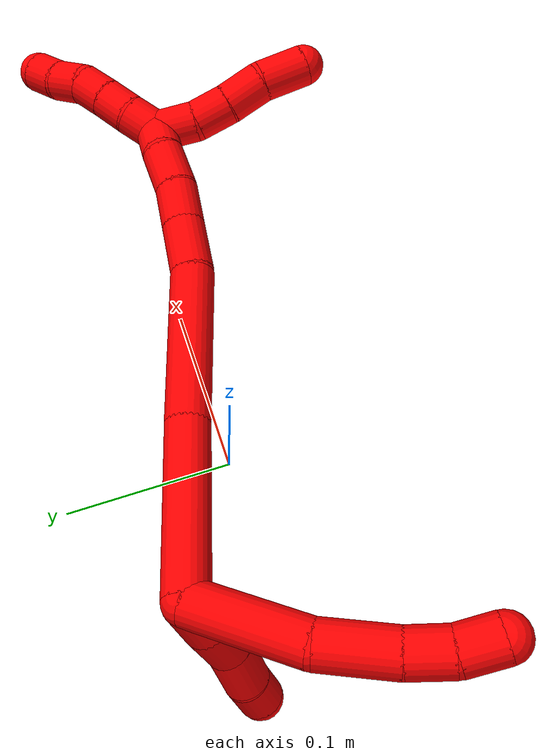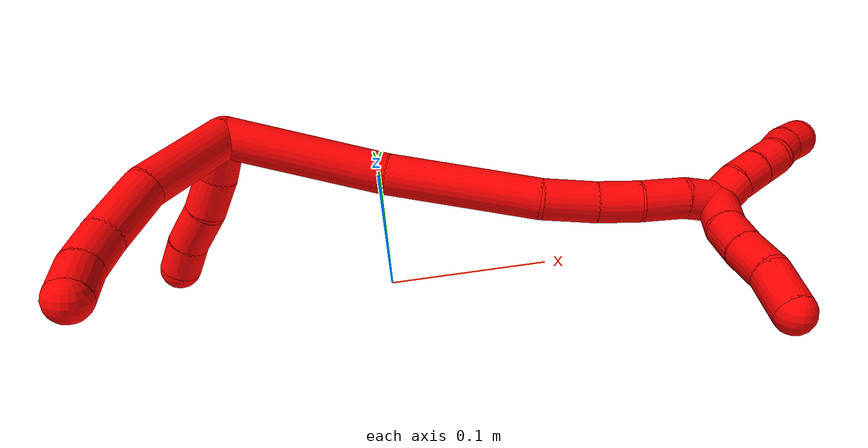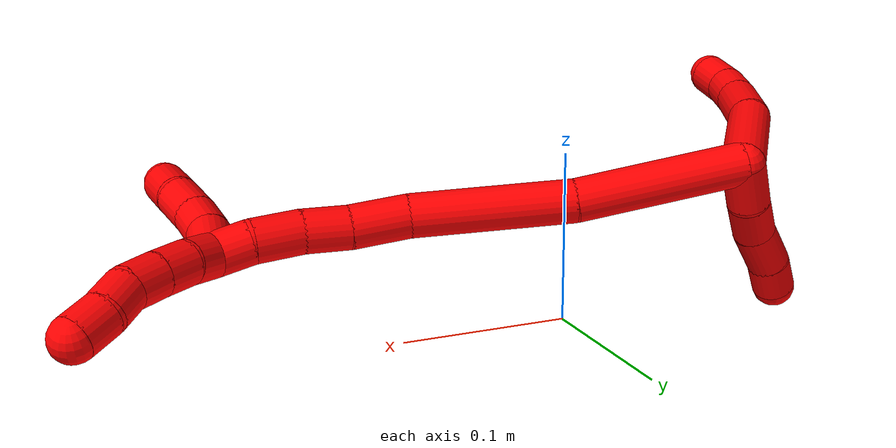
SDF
<sdf version="1.7">
 <world name="default">
  <model name="2">
   <static>0</static>
   <link name="2">
    <collision name="collision-cylinder-e_1_2_8">
     <pose>-0.01746 -0.025716 -0.006687 1.82521 -0.581367 -0.738332</pose>
     <geometry><cylinder><radius>0.0125</radius><length>0.063589</length></cylinder></geometry>
     <surface>
      <friction><ode><mu>1.16</mu><mu2>1.16</mu2><slip1>0</slip1><slip2>0</slip2></ode></friction>
      <contact><ode><kp>1e+06</kp><kd>1</kd><max_vel>0</max_vel><min_depth>0.001</min_depth></ode></contact>
     </surface>
    </collision>
    <visual name="visual-cylinder-e_1_2_8">
     <pose>-0.01746 -0.025716 -0.006687 1.82521 -0.581367 -0.738332</pose>
     <geometry><cylinder><radius>0.0125</radius><length>0.063589</length></cylinder></geometry>
     <material><ambient>1 0 0 1</ambient></material>
    </visual>
    <collision name="collision-cylinder-e_2_8_9">
     <pose>-0.041715 -0.069222 -0.020168 1.93554 -0.342669 -0.492371</pose>
     <geometry><cylinder><radius>0.0125</radius><length>0.040439</length></cylinder></geometry>
     <surface>
      <friction><ode><mu>1.16</mu><mu2>1.16</mu2><slip1>0</slip1><slip2>0</slip2></ode></friction>
      <contact><ode><kp>1e+06</kp><kd>1</kd><max_vel>0</max_vel><min_depth>0.001</min_depth></ode></contact>
     </surface>
    </collision>
    <visual name="visual-cylinder-e_2_8_9">
     <pose>-0.041715 -0.069222 -0.020168 1.93554 -0.342669 -0.492371</pose>
     <geometry><cylinder><radius>0.0125</radius><length>0.040439</length></cylinder></geometry>
     <material><ambient>1 0 0 1</ambient></material>
    </visual>
    <collision name="collision-cylinder-e_3_9_10">
     <pose>-0.05115 -0.097956 -0.030251 1.86288 -0.227145 -0.304439</pose>
     <geometry><cylinder><radius>0.0125</radius><length>0.023456</length></cylinder></geometry>
     <surface>
      <friction><ode><mu>1.16</mu><mu2>1.16</mu2><slip1>0</slip1><slip2>0</slip2></ode></friction>
      <contact><ode><kp>1e+06</kp><kd>1</kd><max_vel>0</max_vel><min_depth>0.001</min_depth></ode></contact>
     </surface>
    </collision>
    <visual name="visual-cylinder-e_3_9_10">
     <pose>-0.05115 -0.097956 -0.030251 1.86288 -0.227145 -0.304439</pose>
     <geometry><cylinder><radius>0.0125</radius><length>0.023456</length></cylinder></geometry>
     <material><ambient>1 0 0 1</ambient></material>
    </visual>
    <collision name="collision-cylinder-e_4_10_6">
     <pose>-0.053759 -0.119876 -0.036045 1.79503 0.002817 0.003532</pose>
     <geometry><cylinder><radius>0.0125</radius><length>0.022516</length></cylinder></geometry>
     <surface>
      <friction><ode><mu>1.16</mu><mu2>1.16</mu2><slip1>0</slip1><slip2>0</slip2></ode></friction>
      <contact><ode><kp>1e+06</kp><kd>1</kd><max_vel>0</max_vel><min_depth>0.001</min_depth></ode></contact>
     </surface>
    </collision>
    <visual name="visual-cylinder-e_4_10_6">
     <pose>-0.053759 -0.119876 -0.036045 1.79503 0.002817 0.003532</pose>
     <geometry><cylinder><radius>0.0125</radius><length>0.022516</length></cylinder></geometry>
     <material><ambient>1 0 0 1</ambient></material>
    </visual>
    <collision name="collision-cylinder-e_1_2_11">
     <pose>-0.002865 0.002372 -0.013254 -2.96448 -0.209653 1.7397</pose>
     <geometry><cylinder><radius>0.0125</radius><length>0.027533</length></cylinder></geometry>
     <surface>
      <friction><ode><mu>1.16</mu><mu2>1.16</mu2><slip1>0</slip1><slip2>0</slip2></ode></friction>
      <contact><ode><kp>1e+06</kp><kd>1</kd><max_vel>0</max_vel><min_depth>0.001</min_depth></ode></contact>
     </surface>
    </collision>
    <visual name="visual-cylinder-e_1_2_11">
     <pose>-0.002865 0.002372 -0.013254 -2.96448 -0.209653 1.7397</pose>
     <geometry><cylinder><radius>0.0125</radius><length>0.027533</length></cylinder></geometry>
     <material><ambient>1 0 0 1</ambient></material>
    </visual>
    <collision name="collision-cylinder-e_2_11_12">
     <pose>-0.009584 0.005196 -0.038373 -3.10361 -0.313864 2.90269</pose>
     <geometry><cylinder><radius>0.0125</radius><length>0.024965</length></cylinder></geometry>
     <surface>
      <friction><ode><mu>1.16</mu><mu2>1.16</mu2><slip1>0</slip1><slip2>0</slip2></ode></friction>
      <contact><ode><kp>1e+06</kp><kd>1</kd><max_vel>0</max_vel><min_depth>0.001</min_depth></ode></contact>
     </surface>
    </collision>
    <visual name="visual-cylinder-e_2_11_12">
     <pose>-0.009584 0.005196 -0.038373 -3.10361 -0.313864 2.90269</pose>
     <geometry><cylinder><radius>0.0125</radius><length>0.024965</length></cylinder></geometry>
     <material><ambient>1 0 0 1</ambient></material>
    </visual>
    <collision name="collision-cylinder-e_3_12_13">
     <pose>-0.019294 0.007996 -0.062205 -2.94774 -0.447682 2.33431</pose>
     <geometry><cylinder><radius>0.0125</radius><length>0.027059</length></cylinder></geometry>
     <surface>
      <friction><ode><mu>1.16</mu><mu2>1.16</mu2><slip1>0</slip1><slip2>0</slip2></ode></friction>
      <contact><ode><kp>1e+06</kp><kd>1</kd><max_vel>0</max_vel><min_depth>0.001</min_depth></ode></contact>
     </surface>
    </collision>
    <visual name="visual-cylinder-e_3_12_13">
     <pose>-0.019294 0.007996 -0.062205 -2.94774 -0.447682 2.33431</pose>
     <geometry><cylinder><radius>0.0125</radius><length>0.027059</length></cylinder></geometry>
     <material><ambient>1 0 0 1</ambient></material>
    </visual>
    <collision name="collision-cylinder-e_4_13_5">
     <pose>-0.028121 0.011762 -0.08385 -2.99624 -0.29478 2.22976</pose>
     <geometry><cylinder><radius>0.0125</radius><length>0.020443</length></cylinder></geometry>
     <surface>
      <friction><ode><mu>1.16</mu><mu2>1.16</mu2><slip1>0</slip1><slip2>0</slip2></ode></friction>
      <contact><ode><kp>1e+06</kp><kd>1</kd><max_vel>0</max_vel><min_depth>0.001</min_depth></ode></contact>
     </surface>
    </collision>
    <visual name="visual-cylinder-e_4_13_5">
     <pose>-0.028121 0.011762 -0.08385 -2.99624 -0.29478 2.22976</pose>
     <geometry><cylinder><radius>0.0125</radius><length>0.020443</length></cylinder></geometry>
     <material><ambient>1 0 0 1</ambient></material>
    </visual>
    <collision name="collision-cylinder-e_1_2_14">
     <pose>0.047795 -0.007157 -0.007268 2.36387 1.36053 2.20409</pose>
     <geometry><cylinder><radius>0.0125</radius><length>0.097743</length></cylinder></geometry>
     <surface>
      <friction><ode><mu>1.16</mu><mu2>1.16</mu2><slip1>0</slip1><slip2>0</slip2></ode></friction>
      <contact><ode><kp>1e+06</kp><kd>1</kd><max_vel>0</max_vel><min_depth>0.001</min_depth></ode></contact>
     </surface>
    </collision>
    <visual name="visual-cylinder-e_1_2_14">
     <pose>0.047795 -0.007157 -0.007268 2.36387 1.36053 2.20409</pose>
     <geometry><cylinder><radius>0.0125</radius><length>0.097743</length></cylinder></geometry>
     <material><ambient>1 0 0 1</ambient></material>
    </visual>
    <collision name="collision-cylinder-e_2_14_15">
     <pose>0.140946 -0.024814 -0.016852 1.78794 1.33804 1.55478</pose>
     <geometry><cylinder><radius>0.0125</radius><length>0.093226</length></cylinder></geometry>
     <surface>
      <friction><ode><mu>1.16</mu><mu2>1.16</mu2><slip1>0</slip1><slip2>0</slip2></ode></friction>
      <contact><ode><kp>1e+06</kp><kd>1</kd><max_vel>0</max_vel><min_depth>0.001</min_depth></ode></contact>
     </surface>
    </collision>
    <visual name="visual-cylinder-e_2_14_15">
     <pose>0.140946 -0.024814 -0.016852 1.78794 1.33804 1.55478</pose>
     <geometry><cylinder><radius>0.0125</radius><length>0.093226</length></cylinder></geometry>
     <material><ambient>1 0 0 1</ambient></material>
    </visual>
    <collision name="collision-cylinder-e_3_15_16">
     <pose>0.203054 -0.035961 -0.019385 1.89238 1.53008 1.8535</pose>
     <geometry><cylinder><radius>0.0125</radius><length>0.033532</length></cylinder></geometry>
     <surface>
      <friction><ode><mu>1.16</mu><mu2>1.16</mu2><slip1>0</slip1><slip2>0</slip2></ode></friction>
      <contact><ode><kp>1e+06</kp><kd>1</kd><max_vel>0</max_vel><min_depth>0.001</min_depth></ode></contact>
     </surface>
    </collision>
    <visual name="visual-cylinder-e_3_15_16">
     <pose>0.203054 -0.035961 -0.019385 1.89238 1.53008 1.8535</pose>
     <geometry><cylinder><radius>0.0125</radius><length>0.033532</length></cylinder></geometry>
     <material><ambient>1 0 0 1</ambient></material>
    </visual>
    <collision name="collision-cylinder-e_4_16_17">
     <pose>0.232774 -0.037691 -0.018477 0.767022 1.45106 0.687311</pose>
     <geometry><cylinder><radius>0.0125</radius><length>0.026123</length></cylinder></geometry>
     <surface>
      <friction><ode><mu>1.16</mu><mu2>1.16</mu2><slip1>0</slip1><slip2>0</slip2></ode></friction>
      <contact><ode><kp>1e+06</kp><kd>1</kd><max_vel>0</max_vel><min_depth>0.001</min_depth></ode></contact>
     </surface>
    </collision>
    <visual name="visual-cylinder-e_4_16_17">
     <pose>0.232774 -0.037691 -0.018477 0.767022 1.45106 0.687311</pose>
     <geometry><cylinder><radius>0.0125</radius><length>0.026123</length></cylinder></geometry>
     <material><ambient>1 0 0 1</ambient></material>
    </visual>
    <collision name="collision-cylinder-e_5_17_18">
     <pose>0.259635 -0.037726 -0.016182 -0.729629 1.45812 -0.657508</pose>
     <geometry><cylinder><radius>0.0125</radius><length>0.027961</length></cylinder></geometry>
     <surface>
      <friction><ode><mu>1.16</mu><mu2>1.16</mu2><slip1>0</slip1><slip2>0</slip2></ode></friction>
      <contact><ode><kp>1e+06</kp><kd>1</kd><max_vel>0</max_vel><min_depth>0.001</min_depth></ode></contact>
     </surface>
    </collision>
    <visual name="visual-cylinder-e_5_17_18">
     <pose>0.259635 -0.037726 -0.016182 -0.729629 1.45812 -0.657508</pose>
     <geometry><cylinder><radius>0.0125</radius><length>0.027961</length></cylinder></geometry>
     <material><ambient>1 0 0 1</ambient></material>
    </visual>
    <collision name="collision-cylinder-e_6_18_1">
     <pose>0.28414 -0.035879 -0.016174 -2.54001 1.43851 -2.46074</pose>
     <geometry><cylinder><radius>0.0125</radius><length>0.021415</length></cylinder></geometry>
     <surface>
      <friction><ode><mu>1.16</mu><mu2>1.16</mu2><slip1>0</slip1><slip2>0</slip2></ode></friction>
      <contact><ode><kp>1e+06</kp><kd>1</kd><max_vel>0</max_vel><min_depth>0.001</min_depth></ode></contact>
     </surface>
    </collision>
    <visual name="visual-cylinder-e_6_18_1">
     <pose>0.28414 -0.035879 -0.016174 -2.54001 1.43851 -2.46074</pose>
     <geometry><cylinder><radius>0.0125</radius><length>0.021415</length></cylinder></geometry>
     <material><ambient>1 0 0 1</ambient></material>
    </visual>
    <collision name="collision-cylinder-e_1_1_19">
     <pose>0.293958 -0.047291 -0.020764 1.84423 -0.062719 -0.082708</pose>
     <geometry><cylinder><radius>0.0125</radius><length>0.025416</length></cylinder></geometry>
     <surface>
      <friction><ode><mu>1.16</mu><mu2>1.16</mu2><slip1>0</slip1><slip2>0</slip2></ode></friction>
      <contact><ode><kp>1e+06</kp><kd>1</kd><max_vel>0</max_vel><min_depth>0.001</min_depth></ode></contact>
     </surface>
    </collision>
    <visual name="visual-cylinder-e_1_1_19">
     <pose>0.293958 -0.047291 -0.020764 1.84423 -0.062719 -0.082708</pose>
     <geometry><cylinder><radius>0.0125</radius><length>0.025416</length></cylinder></geometry>
     <material><ambient>1 0 0 1</ambient></material>
    </visual>
    <collision name="collision-cylinder-e_2_19_20">
     <pose>0.295028 -0.070149 -0.026124 1.75065 0.170888 0.204543</pose>
     <geometry><cylinder><radius>0.0125</radius><length>0.021959</length></cylinder></geometry>
     <surface>
      <friction><ode><mu>1.16</mu><mu2>1.16</mu2><slip1>0</slip1><slip2>0</slip2></ode></friction>
      <contact><ode><kp>1e+06</kp><kd>1</kd><max_vel>0</max_vel><min_depth>0.001</min_depth></ode></contact>
     </surface>
    </collision>
    <visual name="visual-cylinder-e_2_19_20">
     <pose>0.295028 -0.070149 -0.026124 1.75065 0.170888 0.204543</pose>
     <geometry><cylinder><radius>0.0125</radius><length>0.021959</length></cylinder></geometry>
     <material><ambient>1 0 0 1</ambient></material>
    </visual>
    <collision name="collision-cylinder-e_3_20_21">
     <pose>0.300179 -0.092438 -0.029757 1.71552 0.272146 0.314035</pose>
     <geometry><cylinder><radius>0.0125</radius><length>0.024435</length></cylinder></geometry>
     <surface>
      <friction><ode><mu>1.16</mu><mu2>1.16</mu2><slip1>0</slip1><slip2>0</slip2></ode></friction>
      <contact><ode><kp>1e+06</kp><kd>1</kd><max_vel>0</max_vel><min_depth>0.001</min_depth></ode></contact>
     </surface>
    </collision>
    <visual name="visual-cylinder-e_3_20_21">
     <pose>0.300179 -0.092438 -0.029757 1.71552 0.272146 0.314035</pose>
     <geometry><cylinder><radius>0.0125</radius><length>0.024435</length></cylinder></geometry>
     <material><ambient>1 0 0 1</ambient></material>
    </visual>
    <collision name="collision-cylinder-e_4_21_4">
     <pose>0.305774 -0.117116 -0.036299 1.92671 0.164645 0.236291</pose>
     <geometry><cylinder><radius>0.0125</radius><length>0.02819</length></cylinder></geometry>
     <surface>
      <friction><ode><mu>1.16</mu><mu2>1.16</mu2><slip1>0</slip1><slip2>0</slip2></ode></friction>
      <contact><ode><kp>1e+06</kp><kd>1</kd><max_vel>0</max_vel><min_depth>0.001</min_depth></ode></contact>
     </surface>
    </collision>
    <visual name="visual-cylinder-e_4_21_4">
     <pose>0.305774 -0.117116 -0.036299 1.92671 0.164645 0.236291</pose>
     <geometry><cylinder><radius>0.0125</radius><length>0.02819</length></cylinder></geometry>
     <material><ambient>1 0 0 1</ambient></material>
    </visual>
    <collision name="collision-cylinder-e_1_1_22">
     <pose>0.301964 -0.029699 -0.012972 -0.889045 0.805187 -0.400253</pose>
     <geometry><cylinder><radius>0.0125</radius><length>0.02</length></cylinder></geometry>
     <surface>
      <friction><ode><mu>1.16</mu><mu2>1.16</mu2><slip1>0</slip1><slip2>0</slip2></ode></friction>
      <contact><ode><kp>1e+06</kp><kd>1</kd><max_vel>0</max_vel><min_depth>0.001</min_depth></ode></contact>
     </surface>
    </collision>
    <visual name="visual-cylinder-e_1_1_22">
     <pose>0.301964 -0.029699 -0.012972 -0.889045 0.805187 -0.400253</pose>
     <geometry><cylinder><radius>0.0125</radius><length>0.02</length></cylinder></geometry>
     <material><ambient>1 0 0 1</ambient></material>
    </visual>
    <collision name="collision-cylinder-e_2_22_23">
     <pose>0.317169 -0.01907 -0.005684 -1.06285 0.926519 -0.571205</pose>
     <geometry><cylinder><radius>0.0125</radius><length>0.02</length></cylinder></geometry>
     <surface>
      <friction><ode><mu>1.16</mu><mu2>1.16</mu2><slip1>0</slip1><slip2>0</slip2></ode></friction>
      <contact><ode><kp>1e+06</kp><kd>1</kd><max_vel>0</max_vel><min_depth>0.001</min_depth></ode></contact>
     </surface>
    </collision>
    <visual name="visual-cylinder-e_2_22_23">
     <pose>0.317169 -0.01907 -0.005684 -1.06285 0.926519 -0.571205</pose>
     <geometry><cylinder><radius>0.0125</radius><length>0.02</length></cylinder></geometry>
     <material><ambient>1 0 0 1</ambient></material>
    </visual>
    <collision name="collision-cylinder-e_3_23_24">
     <pose>0.333127 -0.008339 -0.000209 -1.13507 0.921169 -0.612705</pose>
     <geometry><cylinder><radius>0.0125</radius><length>0.02</length></cylinder></geometry>
     <surface>
      <friction><ode><mu>1.16</mu><mu2>1.16</mu2><slip1>0</slip1><slip2>0</slip2></ode></friction>
      <contact><ode><kp>1e+06</kp><kd>1</kd><max_vel>0</max_vel><min_depth>0.001</min_depth></ode></contact>
     </surface>
    </collision>
    <visual name="visual-cylinder-e_3_23_24">
     <pose>0.333127 -0.008339 -0.000209 -1.13507 0.921169 -0.612705</pose>
     <geometry><cylinder><radius>0.0125</radius><length>0.02</length></cylinder></geometry>
     <material><ambient>1 0 0 1</ambient></material>
    </visual>
    <collision name="collision-cylinder-e_4_24_25">
     <pose>0.347193 0.004994 0.003414 -1.43531 0.656443 -0.577891</pose>
     <geometry><cylinder><radius>0.0125</radius><length>0.02</length></cylinder></geometry>
     <surface>
      <friction><ode><mu>1.16</mu><mu2>1.16</mu2><slip1>0</slip1><slip2>0</slip2></ode></friction>
      <contact><ode><kp>1e+06</kp><kd>1</kd><max_vel>0</max_vel><min_depth>0.001</min_depth></ode></contact>
     </surface>
    </collision>
    <visual name="visual-cylinder-e_4_24_25">
     <pose>0.347193 0.004994 0.003414 -1.43531 0.656443 -0.577891</pose>
     <geometry><cylinder><radius>0.0125</radius><length>0.02</length></cylinder></geometry>
     <material><ambient>1 0 0 1</ambient></material>
    </visual>
    <collision name="collision-cylinder-e_5_25_3">
     <pose>0.360952 0.019251 0.005059 -1.48124 0.871976 -0.805312</pose>
     <geometry><cylinder><radius>0.0125</radius><length>0.02</length></cylinder></geometry>
     <surface>
      <friction><ode><mu>1.16</mu><mu2>1.16</mu2><slip1>0</slip1><slip2>0</slip2></ode></friction>
      <contact><ode><kp>1e+06</kp><kd>1</kd><max_vel>0</max_vel><min_depth>0.001</min_depth></ode></contact>
     </surface>
    </collision>
    <visual name="visual-cylinder-e_5_25_3">
     <pose>0.360952 0.019251 0.005059 -1.48124 0.871976 -0.805312</pose>
     <geometry><cylinder><radius>0.0125</radius><length>0.02</length></cylinder></geometry>
     <material><ambient>1 0 0 1</ambient></material>
    </visual>
    <collision name="collision-sphere-3">
     <pose>0.368608 0.025658 0.005634 0 -0 0</pose>
     <geometry><sphere><radius>0.0125</radius></sphere></geometry>
     <surface>
      <friction><ode><mu>1.16</mu><mu2>1.16</mu2><slip1>0</slip1><slip2>0</slip2></ode></friction>
      <contact><ode><kp>1e+06</kp><kd>1</kd><max_vel>0</max_vel><min_depth>0.001</min_depth></ode></contact>
     </surface>
    </collision>
    <visual name="visual-sphere-3">
     <pose>0.368608 0.025658 0.005634 0 -0 0</pose>
     <geometry><sphere><radius>0.0125</radius></sphere></geometry>
     <material><ambient>1 0 0 1</ambient></material>
    </visual>
    <collision name="collision-sphere-25">
     <pose>0.353296 0.012843 0.004484 0 -0 0</pose>
     <geometry><sphere><radius>0.0125</radius></sphere></geometry>
     <surface>
      <friction><ode><mu>1.16</mu><mu2>1.16</mu2><slip1>0</slip1><slip2>0</slip2></ode></friction>
      <contact><ode><kp>1e+06</kp><kd>1</kd><max_vel>0</max_vel><min_depth>0.001</min_depth></ode></contact>
     </surface>
    </collision>
    <visual name="visual-sphere-25">
     <pose>0.353296 0.012843 0.004484 0 -0 0</pose>
     <geometry><sphere><radius>0.0125</radius></sphere></geometry>
     <material><ambient>1 0 0 1</ambient></material>
    </visual>
    <collision name="collision-sphere-24">
     <pose>0.34109 -0.002855 0.002344 0 -0 0</pose>
     <geometry><sphere><radius>0.0125</radius></sphere></geometry>
     <surface>
      <friction><ode><mu>1.16</mu><mu2>1.16</mu2><slip1>0</slip1><slip2>0</slip2></ode></friction>
      <contact><ode><kp>1e+06</kp><kd>1</kd><max_vel>0</max_vel><min_depth>0.001</min_depth></ode></contact>
     </surface>
    </collision>
    <visual name="visual-sphere-24">
     <pose>0.34109 -0.002855 0.002344 0 -0 0</pose>
     <geometry><sphere><radius>0.0125</radius></sphere></geometry>
     <material><ambient>1 0 0 1</ambient></material>
    </visual>
    <collision name="collision-sphere-23">
     <pose>0.325164 -0.013822 -0.002763 0 -0 0</pose>
     <geometry><sphere><radius>0.0125</radius></sphere></geometry>
     <surface>
      <friction><ode><mu>1.16</mu><mu2>1.16</mu2><slip1>0</slip1><slip2>0</slip2></ode></friction>
      <contact><ode><kp>1e+06</kp><kd>1</kd><max_vel>0</max_vel><min_depth>0.001</min_depth></ode></contact>
     </surface>
    </collision>
    <visual name="visual-sphere-23">
     <pose>0.325164 -0.013822 -0.002763 0 -0 0</pose>
     <geometry><sphere><radius>0.0125</radius></sphere></geometry>
     <material><ambient>1 0 0 1</ambient></material>
    </visual>
    <collision name="collision-sphere-22">
     <pose>0.309173 -0.024318 -0.008605 0 -0 0</pose>
     <geometry><sphere><radius>0.0125</radius></sphere></geometry>
     <surface>
      <friction><ode><mu>1.16</mu><mu2>1.16</mu2><slip1>0</slip1><slip2>0</slip2></ode></friction>
      <contact><ode><kp>1e+06</kp><kd>1</kd><max_vel>0</max_vel><min_depth>0.001</min_depth></ode></contact>
     </surface>
    </collision>
    <visual name="visual-sphere-22">
     <pose>0.309173 -0.024318 -0.008605 0 -0 0</pose>
     <geometry><sphere><radius>0.0125</radius></sphere></geometry>
     <material><ambient>1 0 0 1</ambient></material>
    </visual>
    <collision name="collision-sphere-4">
     <pose>0.308084 -0.130149 -0.041144 0 -0 0</pose>
     <geometry><sphere><radius>0.0125</radius></sphere></geometry>
     <surface>
      <friction><ode><mu>1.16</mu><mu2>1.16</mu2><slip1>0</slip1><slip2>0</slip2></ode></friction>
      <contact><ode><kp>1e+06</kp><kd>1</kd><max_vel>0</max_vel><min_depth>0.001</min_depth></ode></contact>
     </surface>
    </collision>
    <visual name="visual-sphere-4">
     <pose>0.308084 -0.130149 -0.041144 0 -0 0</pose>
     <geometry><sphere><radius>0.0125</radius></sphere></geometry>
     <material><ambient>1 0 0 1</ambient></material>
    </visual>
    <collision name="collision-sphere-21">
     <pose>0.303463 -0.104083 -0.031454 0 -0 0</pose>
     <geometry><sphere><radius>0.0125</radius></sphere></geometry>
     <surface>
      <friction><ode><mu>1.16</mu><mu2>1.16</mu2><slip1>0</slip1><slip2>0</slip2></ode></friction>
      <contact><ode><kp>1e+06</kp><kd>1</kd><max_vel>0</max_vel><min_depth>0.001</min_depth></ode></contact>
     </surface>
    </collision>
    <visual name="visual-sphere-21">
     <pose>0.303463 -0.104083 -0.031454 0 -0 0</pose>
     <geometry><sphere><radius>0.0125</radius></sphere></geometry>
     <material><ambient>1 0 0 1</ambient></material>
    </visual>
    <collision name="collision-sphere-20">
     <pose>0.296895 -0.080794 -0.028059 0 -0 0</pose>
     <geometry><sphere><radius>0.0125</radius></sphere></geometry>
     <surface>
      <friction><ode><mu>1.16</mu><mu2>1.16</mu2><slip1>0</slip1><slip2>0</slip2></ode></friction>
      <contact><ode><kp>1e+06</kp><kd>1</kd><max_vel>0</max_vel><min_depth>0.001</min_depth></ode></contact>
     </surface>
    </collision>
    <visual name="visual-sphere-20">
     <pose>0.296895 -0.080794 -0.028059 0 -0 0</pose>
     <geometry><sphere><radius>0.0125</radius></sphere></geometry>
     <material><ambient>1 0 0 1</ambient></material>
    </visual>
    <collision name="collision-sphere-11">
     <pose>-0.00573 0.004745 -0.026509 0 -0 0</pose>
     <geometry><sphere><radius>0.0125</radius></sphere></geometry>
     <surface>
      <friction><ode><mu>1.16</mu><mu2>1.16</mu2><slip1>0</slip1><slip2>0</slip2></ode></friction>
      <contact><ode><kp>1e+06</kp><kd>1</kd><max_vel>0</max_vel><min_depth>0.001</min_depth></ode></contact>
     </surface>
    </collision>
    <visual name="visual-sphere-11">
     <pose>-0.00573 0.004745 -0.026509 0 -0 0</pose>
     <geometry><sphere><radius>0.0125</radius></sphere></geometry>
     <material><ambient>1 0 0 1</ambient></material>
    </visual>
    <collision name="collision-sphere-6">
     <pose>-0.053727 -0.130852 -0.038548 0 -0 0</pose>
     <geometry><sphere><radius>0.0125</radius></sphere></geometry>
     <surface>
      <friction><ode><mu>1.16</mu><mu2>1.16</mu2><slip1>0</slip1><slip2>0</slip2></ode></friction>
      <contact><ode><kp>1e+06</kp><kd>1</kd><max_vel>0</max_vel><min_depth>0.001</min_depth></ode></contact>
     </surface>
    </collision>
    <visual name="visual-sphere-6">
     <pose>-0.053727 -0.130852 -0.038548 0 -0 0</pose>
     <geometry><sphere><radius>0.0125</radius></sphere></geometry>
     <material><ambient>1 0 0 1</ambient></material>
    </visual>
    <collision name="collision-sphere-10">
     <pose>-0.053791 -0.108899 -0.033542 0 -0 0</pose>
     <geometry><sphere><radius>0.0125</radius></sphere></geometry>
     <surface>
      <friction><ode><mu>1.16</mu><mu2>1.16</mu2><slip1>0</slip1><slip2>0</slip2></ode></friction>
      <contact><ode><kp>1e+06</kp><kd>1</kd><max_vel>0</max_vel><min_depth>0.001</min_depth></ode></contact>
     </surface>
    </collision>
    <visual name="visual-sphere-10">
     <pose>-0.053791 -0.108899 -0.033542 0 -0 0</pose>
     <geometry><sphere><radius>0.0125</radius></sphere></geometry>
     <material><ambient>1 0 0 1</ambient></material>
    </visual>
    <collision name="collision-sphere-9">
     <pose>-0.048508 -0.087013 -0.026961 0 -0 0</pose>
     <geometry><sphere><radius>0.0125</radius></sphere></geometry>
     <surface>
      <friction><ode><mu>1.16</mu><mu2>1.16</mu2><slip1>0</slip1><slip2>0</slip2></ode></friction>
      <contact><ode><kp>1e+06</kp><kd>1</kd><max_vel>0</max_vel><min_depth>0.001</min_depth></ode></contact>
     </surface>
    </collision>
    <visual name="visual-sphere-9">
     <pose>-0.048508 -0.087013 -0.026961 0 -0 0</pose>
     <geometry><sphere><radius>0.0125</radius></sphere></geometry>
     <material><ambient>1 0 0 1</ambient></material>
    </visual>
    <collision name="collision-sphere-2">
     <geometry><sphere><radius>0.0125</radius></sphere></geometry>
     <surface>
      <friction><ode><mu>1.16</mu><mu2>1.16</mu2><slip1>0</slip1><slip2>0</slip2></ode></friction>
      <contact><ode><kp>1e+06</kp><kd>1</kd><max_vel>0</max_vel><min_depth>0.001</min_depth></ode></contact>
     </surface>
    </collision>
    <visual name="visual-sphere-2">
     <geometry><sphere><radius>0.0125</radius></sphere></geometry>
     <material><ambient>1 0 0 1</ambient></material>
    </visual>
    <collision name="collision-sphere-19">
     <pose>0.293161 -0.059503 -0.024189 0 -0 0</pose>
     <geometry><sphere><radius>0.0125</radius></sphere></geometry>
     <surface>
      <friction><ode><mu>1.16</mu><mu2>1.16</mu2><slip1>0</slip1><slip2>0</slip2></ode></friction>
      <contact><ode><kp>1e+06</kp><kd>1</kd><max_vel>0</max_vel><min_depth>0.001</min_depth></ode></contact>
     </surface>
    </collision>
    <visual name="visual-sphere-19">
     <pose>0.293161 -0.059503 -0.024189 0 -0 0</pose>
     <geometry><sphere><radius>0.0125</radius></sphere></geometry>
     <material><ambient>1 0 0 1</ambient></material>
    </visual>
    <collision name="collision-sphere-8">
     <pose>-0.034921 -0.051431 -0.013375 0 -0 0</pose>
     <geometry><sphere><radius>0.0125</radius></sphere></geometry>
     <surface>
      <friction><ode><mu>1.16</mu><mu2>1.16</mu2><slip1>0</slip1><slip2>0</slip2></ode></friction>
      <contact><ode><kp>1e+06</kp><kd>1</kd><max_vel>0</max_vel><min_depth>0.001</min_depth></ode></contact>
     </surface>
    </collision>
    <visual name="visual-sphere-8">
     <pose>-0.034921 -0.051431 -0.013375 0 -0 0</pose>
     <geometry><sphere><radius>0.0125</radius></sphere></geometry>
     <material><ambient>1 0 0 1</ambient></material>
    </visual>
    <collision name="collision-sphere-12">
     <pose>-0.013438 0.005646 -0.050237 0 -0 0</pose>
     <geometry><sphere><radius>0.0125</radius></sphere></geometry>
     <surface>
      <friction><ode><mu>1.16</mu><mu2>1.16</mu2><slip1>0</slip1><slip2>0</slip2></ode></friction>
      <contact><ode><kp>1e+06</kp><kd>1</kd><max_vel>0</max_vel><min_depth>0.001</min_depth></ode></contact>
     </surface>
    </collision>
    <visual name="visual-sphere-12">
     <pose>-0.013438 0.005646 -0.050237 0 -0 0</pose>
     <geometry><sphere><radius>0.0125</radius></sphere></geometry>
     <material><ambient>1 0 0 1</ambient></material>
    </visual>
    <collision name="collision-sphere-13">
     <pose>-0.025151 0.010345 -0.074173 0 -0 0</pose>
     <geometry><sphere><radius>0.0125</radius></sphere></geometry>
     <surface>
      <friction><ode><mu>1.16</mu><mu2>1.16</mu2><slip1>0</slip1><slip2>0</slip2></ode></friction>
      <contact><ode><kp>1e+06</kp><kd>1</kd><max_vel>0</max_vel><min_depth>0.001</min_depth></ode></contact>
     </surface>
    </collision>
    <visual name="visual-sphere-13">
     <pose>-0.025151 0.010345 -0.074173 0 -0 0</pose>
     <geometry><sphere><radius>0.0125</radius></sphere></geometry>
     <material><ambient>1 0 0 1</ambient></material>
    </visual>
    <collision name="collision-sphere-5">
     <pose>-0.03109 0.013179 -0.093528 0 -0 0</pose>
     <geometry><sphere><radius>0.0125</radius></sphere></geometry>
     <surface>
      <friction><ode><mu>1.16</mu><mu2>1.16</mu2><slip1>0</slip1><slip2>0</slip2></ode></friction>
      <contact><ode><kp>1e+06</kp><kd>1</kd><max_vel>0</max_vel><min_depth>0.001</min_depth></ode></contact>
     </surface>
    </collision>
    <visual name="visual-sphere-5">
     <pose>-0.03109 0.013179 -0.093528 0 -0 0</pose>
     <geometry><sphere><radius>0.0125</radius></sphere></geometry>
     <material><ambient>1 0 0 1</ambient></material>
    </visual>
    <collision name="collision-sphere-14">
     <pose>0.09559 -0.014315 -0.014536 0 -0 0</pose>
     <geometry><sphere><radius>0.0125</radius></sphere></geometry>
     <surface>
      <friction><ode><mu>1.16</mu><mu2>1.16</mu2><slip1>0</slip1><slip2>0</slip2></ode></friction>
      <contact><ode><kp>1e+06</kp><kd>1</kd><max_vel>0</max_vel><min_depth>0.001</min_depth></ode></contact>
     </surface>
    </collision>
    <visual name="visual-sphere-14">
     <pose>0.09559 -0.014315 -0.014536 0 -0 0</pose>
     <geometry><sphere><radius>0.0125</radius></sphere></geometry>
     <material><ambient>1 0 0 1</ambient></material>
    </visual>
    <collision name="collision-sphere-15">
     <pose>0.186302 -0.035313 -0.019169 0 -0 0</pose>
     <geometry><sphere><radius>0.0125</radius></sphere></geometry>
     <surface>
      <friction><ode><mu>1.16</mu><mu2>1.16</mu2><slip1>0</slip1><slip2>0</slip2></ode></friction>
      <contact><ode><kp>1e+06</kp><kd>1</kd><max_vel>0</max_vel><min_depth>0.001</min_depth></ode></contact>
     </surface>
    </collision>
    <visual name="visual-sphere-15">
     <pose>0.186302 -0.035313 -0.019169 0 -0 0</pose>
     <geometry><sphere><radius>0.0125</radius></sphere></geometry>
     <material><ambient>1 0 0 1</ambient></material>
    </visual>
    <collision name="collision-sphere-16">
     <pose>0.219806 -0.036608 -0.0196 0 -0 0</pose>
     <geometry><sphere><radius>0.0125</radius></sphere></geometry>
     <surface>
      <friction><ode><mu>1.16</mu><mu2>1.16</mu2><slip1>0</slip1><slip2>0</slip2></ode></friction>
      <contact><ode><kp>1e+06</kp><kd>1</kd><max_vel>0</max_vel><min_depth>0.001</min_depth></ode></contact>
     </surface>
    </collision>
    <visual name="visual-sphere-16">
     <pose>0.219806 -0.036608 -0.0196 0 -0 0</pose>
     <geometry><sphere><radius>0.0125</radius></sphere></geometry>
     <material><ambient>1 0 0 1</ambient></material>
    </visual>
    <collision name="collision-sphere-17">
     <pose>0.245743 -0.038774 -0.017354 0 -0 0</pose>
     <geometry><sphere><radius>0.0125</radius></sphere></geometry>
     <surface>
      <friction><ode><mu>1.16</mu><mu2>1.16</mu2><slip1>0</slip1><slip2>0</slip2></ode></friction>
      <contact><ode><kp>1e+06</kp><kd>1</kd><max_vel>0</max_vel><min_depth>0.001</min_depth></ode></contact>
     </surface>
    </collision>
    <visual name="visual-sphere-17">
     <pose>0.245743 -0.038774 -0.017354 0 -0 0</pose>
     <geometry><sphere><radius>0.0125</radius></sphere></geometry>
     <material><ambient>1 0 0 1</ambient></material>
    </visual>
    <collision name="collision-sphere-18">
     <pose>0.273527 -0.036678 -0.01501 0 -0 0</pose>
     <geometry><sphere><radius>0.0125</radius></sphere></geometry>
     <surface>
      <friction><ode><mu>1.16</mu><mu2>1.16</mu2><slip1>0</slip1><slip2>0</slip2></ode></friction>
      <contact><ode><kp>1e+06</kp><kd>1</kd><max_vel>0</max_vel><min_depth>0.001</min_depth></ode></contact>
     </surface>
    </collision>
    <visual name="visual-sphere-18">
     <pose>0.273527 -0.036678 -0.01501 0 -0 0</pose>
     <geometry><sphere><radius>0.0125</radius></sphere></geometry>
     <material><ambient>1 0 0 1</ambient></material>
    </visual>
    <collision name="collision-sphere-1">
     <pose>0.294754 -0.035079 -0.017339 0 -0 0</pose>
     <geometry><sphere><radius>0.0125</radius></sphere></geometry>
     <surface>
      <friction><ode><mu>1.16</mu><mu2>1.16</mu2><slip1>0</slip1><slip2>0</slip2></ode></friction>
      <contact><ode><kp>1e+06</kp><kd>1</kd><max_vel>0</max_vel><min_depth>0.001</min_depth></ode></contact>
     </surface>
    </collision>
    <visual name="visual-sphere-1">
     <pose>0.294754 -0.035079 -0.017339 0 -0 0</pose>
     <geometry><sphere><radius>0.0125</radius></sphere></geometry>
     <material><ambient>1 0 0 1</ambient></material>
    </visual>
    <inertial>
     <pose>0.134047 -0.033021 -0.019673 0 -0 0</pose>
     <mass>0.75</mass>
     <inertia><ixx>6.4e-05</ixx><ixy>0</ixy><ixz>0</ixz><iyy>0.000173</iyy><iyz>0</iyz><izz>-0.0001</izz></inertia>
    </inertial>
   </link>
   <pose>-0.086823 0.049572 0.096771 -0.450009 0.127199 -0.094147</pose>
  </model>
 </world>
</sdf>
